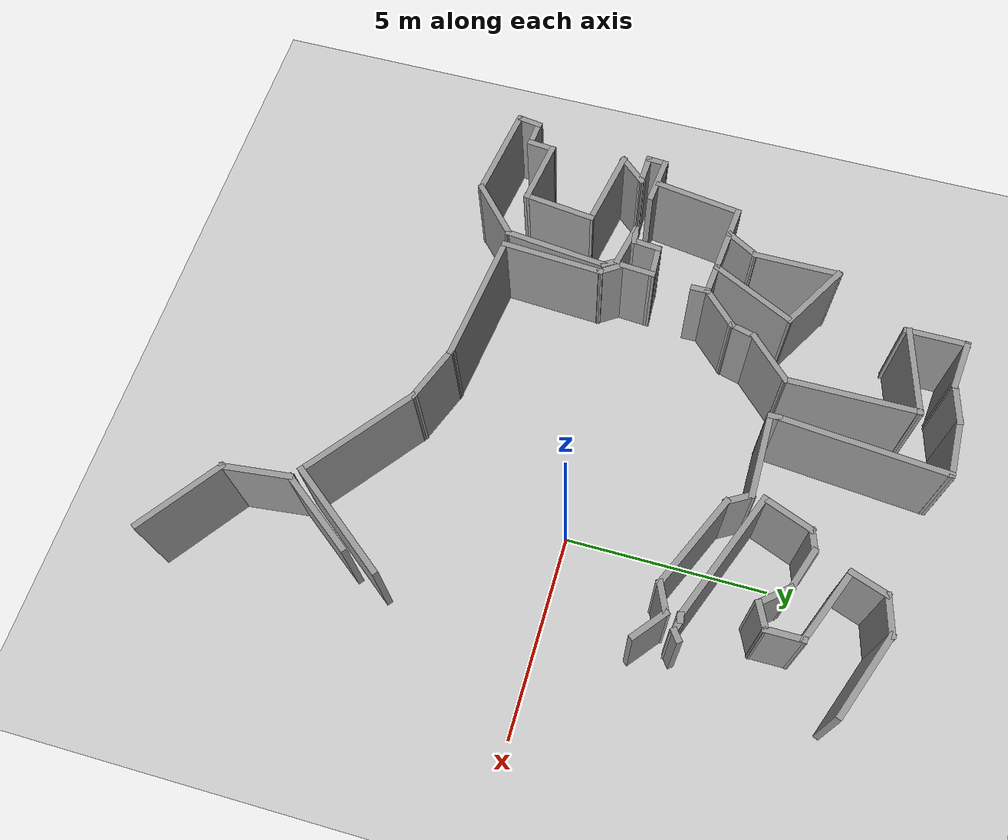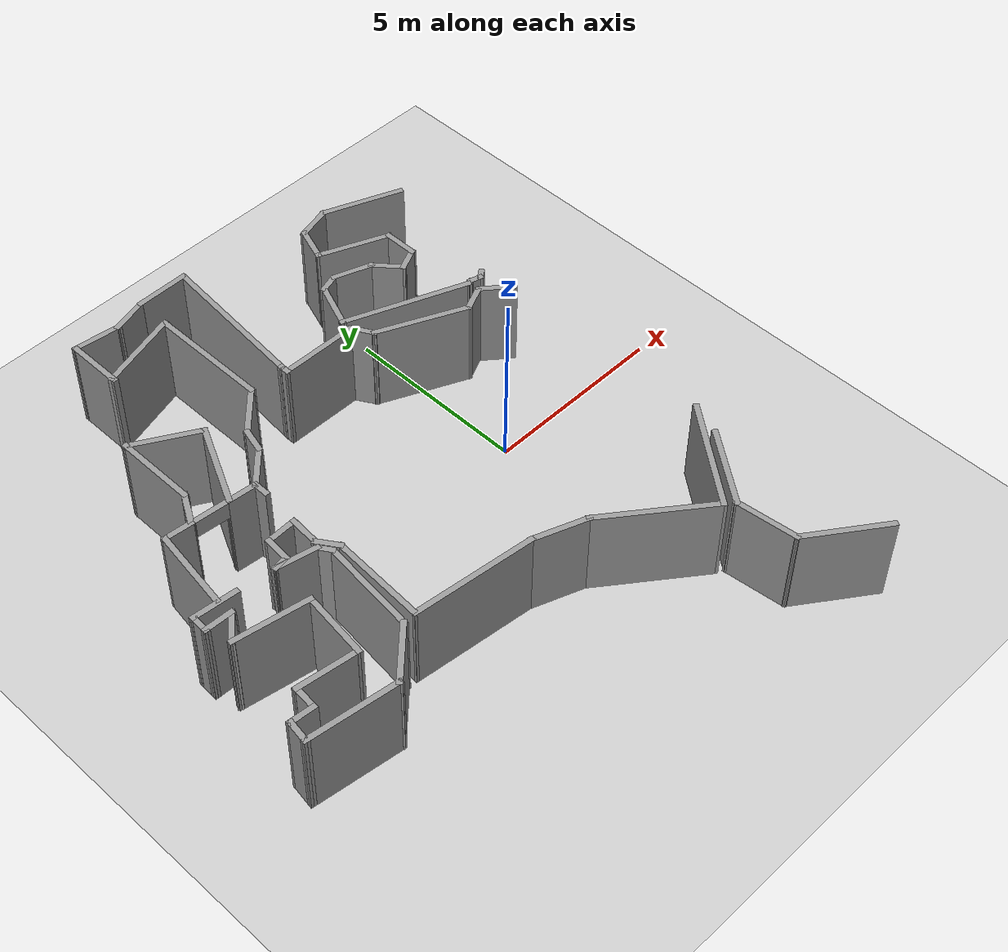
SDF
<sdf version="1.7">
 <world name="default">
  <model name="ground_plane">
   <static>1</static>
   <link name="link">
    <collision name="collision">
     <geometry><plane><normal>0 0 1</normal><size>100 100</size></plane></geometry>
     <surface><friction><ode><mu>100</mu><mu2>50</mu2></ode></friction></surface>
    </collision>
    <visual name="visual">
     <cast_shadows>0</cast_shadows>
     <geometry><plane><normal>0 0 1</normal><size>100 100</size></plane></geometry>
     <material>
      <script><uri>file://media/materials/scripts/gazebo.material</uri><name>Gazebo/Grey</name></script>
     </material>
    </visual>
   </link>
  </model>
  <model name="c82_house_gz">
   <pose>0.081452 -0.44571 0 0 -0 0</pose>
   <link name="Wall_0">
    <collision name="Wall_0_Collision">
     <geometry><box><size>1.61998 0.15 2.5</size></box></geometry>
     <pose>0 0 1.25 0 -0 0</pose>
    </collision>
    <visual name="Wall_0_Visual">
     <pose>0 0 1.25 0 -0 0</pose>
     <geometry><box><size>1.61998 0.15 2.5</size></box></geometry>
     <material>
      <script><uri>file://media/materials/scripts/gazebo.material</uri><name>Gazebo/Grey</name></script>
      <ambient>1 1 1 1</ambient>
     </material>
     <meta><layer>0</layer></meta>
    </visual>
    <pose>-6.59257 7.92893 0 0 -0 1.5708</pose>
   </link>
   <link name="Wall_1">
    <collision name="Wall_1_Collision">
     <geometry><box><size>1.33318 0.15 2.5</size></box></geometry>
     <pose>0 0 1.25 0 -0 0</pose>
    </collision>
    <visual name="Wall_1_Visual">
     <pose>0 0 1.25 0 -0 0</pose>
     <geometry><box><size>1.33318 0.15 2.5</size></box></geometry>
     <material>
      <script><uri>file://media/materials/scripts/gazebo.material</uri><name>Gazebo/Grey</name></script>
      <ambient>1 1 1 1</ambient>
     </material>
     <meta><layer>0</layer></meta>
    </visual>
    <pose>-6.00561 8.5898 0 0 -0 -0.125267</pose>
   </link>
   <link name="Wall_10">
    <collision name="Wall_10_Collision">
     <geometry><box><size>1.04168 0.15 2.5</size></box></geometry>
     <pose>0 0 1.25 0 -0 0</pose>
    </collision>
    <visual name="Wall_10_Visual">
     <pose>0 0 1.25 0 -0 0</pose>
     <geometry><box><size>1.04168 0.15 2.5</size></box></geometry>
     <material>
      <script><uri>file://media/materials/scripts/gazebo.material</uri><name>Gazebo/Grey</name></script>
      <ambient>1 1 1 1</ambient>
     </material>
     <meta><layer>0</layer></meta>
    </visual>
    <pose>2.08465 2.90774 0 0 -0 -0.685729</pose>
   </link>
   <link name="Wall_100">
    <collision name="Wall_100_Collision">
     <geometry><box><size>0.752581 0.15 2.5</size></box></geometry>
     <pose>0 0 1.25 0 -0 0</pose>
    </collision>
    <visual name="Wall_100_Visual">
     <pose>0 0 1.25 0 -0 0</pose>
     <geometry><box><size>0.752581 0.15 2.5</size></box></geometry>
     <material>
      <script><uri>file://media/materials/scripts/gazebo.material</uri><name>Gazebo/Grey</name></script>
      <ambient>1 1 1 1</ambient>
     </material>
     <meta><layer>0</layer></meta>
    </visual>
    <pose>-9.53018 -2.82113 0 0 -0 1.48014</pose>
   </link>
   <link name="Wall_101">
    <collision name="Wall_101_Collision">
     <geometry><box><size>1.74708 0.15 2.5</size></box></geometry>
     <pose>0 0 1.25 0 -0 0</pose>
    </collision>
    <visual name="Wall_101_Visual">
     <pose>0 0 1.25 0 -0 0</pose>
     <geometry><box><size>1.74708 0.15 2.5</size></box></geometry>
     <material>
      <script><uri>file://media/materials/scripts/gazebo.material</uri><name>Gazebo/Grey</name></script>
      <ambient>1 1 1 1</ambient>
     </material>
     <meta><layer>0</layer></meta>
    </visual>
    <pose>-8.71186 -2.63019 0 0 -0 -0.137066</pose>
   </link>
   <link name="Wall_102">
    <collision name="Wall_102_Collision">
     <geometry><box><size>1.90935 0.15 2.5</size></box></geometry>
     <pose>0 0 1.25 0 -0 0</pose>
    </collision>
    <visual name="Wall_102_Visual">
     <pose>0 0 1.25 0 -0 0</pose>
     <geometry><box><size>1.90935 0.15 2.5</size></box></geometry>
     <material>
      <script><uri>file://media/materials/scripts/gazebo.material</uri><name>Gazebo/Grey</name></script>
      <ambient>1 1 1 1</ambient>
     </material>
     <meta><layer>0</layer></meta>
    </visual>
    <pose>-7.8117 -1.86642 0 0 -0 1.44644</pose>
   </link>
   <link name="Wall_103">
    <collision name="Wall_103_Collision">
     <geometry><box><size>2.14574 0.15 2.5</size></box></geometry>
     <pose>0 0 1.25 0 -0 0</pose>
    </collision>
    <visual name="Wall_103_Visual">
     <pose>0 0 1.25 0 -0 0</pose>
     <geometry><box><size>2.14574 0.15 2.5</size></box></geometry>
     <material>
      <script><uri>file://media/materials/scripts/gazebo.material</uri><name>Gazebo/Grey</name></script>
      <ambient>1 1 1 1</ambient>
     </material>
     <meta><layer>0</layer></meta>
    </visual>
    <pose>-8.68458 -0.816233 0 0 -0 2.96296</pose>
   </link>
   <link name="Wall_104">
    <collision name="Wall_104_Collision">
     <geometry><box><size>0.942928 0.15 2.5</size></box></geometry>
     <pose>0 0 1.25 0 -0 0</pose>
    </collision>
    <visual name="Wall_104_Visual">
     <pose>0 0 1.25 0 -0 0</pose>
     <geometry><box><size>0.942928 0.15 2.5</size></box></geometry>
     <material>
      <script><uri>file://media/materials/scripts/gazebo.material</uri><name>Gazebo/Grey</name></script>
      <ambient>1 1 1 1</ambient>
     </material>
     <meta><layer>0</layer></meta>
    </visual>
    <pose>-9.40743 -0.338876 0 0 -0 0.858439</pose>
   </link>
   <link name="Wall_105">
    <collision name="Wall_105_Collision">
     <geometry><box><size>0.859741 0.15 2.5</size></box></geometry>
     <pose>0 0 1.25 0 -0 0</pose>
    </collision>
    <visual name="Wall_105_Visual">
     <pose>0 0 1.25 0 -0 0</pose>
     <geometry><box><size>0.859741 0.15 2.5</size></box></geometry>
     <material>
      <script><uri>file://media/materials/scripts/gazebo.material</uri><name>Gazebo/Grey</name></script>
      <ambient>1 1 1 1</ambient>
     </material>
     <meta><layer>0</layer></meta>
    </visual>
    <pose>-9.50291 -0.025184 0 0 -0 3.10315</pose>
   </link>
   <link name="Wall_106">
    <collision name="Wall_106_Collision">
     <geometry><box><size>0.587293 0.15 2.5</size></box></geometry>
     <pose>0 0 1.25 0 -0 0</pose>
    </collision>
    <visual name="Wall_106_Visual">
     <pose>0 0 1.25 0 -0 0</pose>
     <geometry><box><size>0.587293 0.15 2.5</size></box></geometry>
     <material>
      <script><uri>file://media/materials/scripts/gazebo.material</uri><name>Gazebo/Grey</name></script>
      <ambient>1 1 1 1</ambient>
     </material>
     <meta><layer>0</layer></meta>
    </visual>
    <pose>-9.84388 0.206675 0 0 -0 1.50838</pose>
   </link>
   <link name="Wall_107">
    <collision name="Wall_107_Collision">
     <geometry><box><size>1.27369 0.15 2.5</size></box></geometry>
     <pose>0 0 1.25 0 -0 0</pose>
    </collision>
    <visual name="Wall_107_Visual">
     <pose>0 0 1.25 0 -0 0</pose>
     <geometry><box><size>1.27369 0.15 2.5</size></box></geometry>
     <material>
      <script><uri>file://media/materials/scripts/gazebo.material</uri><name>Gazebo/Grey</name></script>
      <ambient>1 1 1 1</ambient>
     </material>
     <meta><layer>0</layer></meta>
    </visual>
    <pose>-9.27105 0.370341 0 0 -0 -0.097253</pose>
   </link>
   <link name="Wall_110">
    <collision name="Wall_110_Collision">
     <geometry><box><size>2.30192 0.15 2.5</size></box></geometry>
     <pose>0 0 1.25 0 -0 0</pose>
    </collision>
    <visual name="Wall_110_Visual">
     <pose>0 0 1.25 0 -0 0</pose>
     <geometry><box><size>2.30192 0.15 2.5</size></box></geometry>
     <material>
      <script><uri>file://media/materials/scripts/gazebo.material</uri><name>Gazebo/Grey</name></script>
      <ambient>1 1 1 1</ambient>
     </material>
     <meta><layer>0</layer></meta>
    </visual>
    <pose>-9.01638 1.49172 0 0 -0 1.42533</pose>
   </link>
   <link name="Wall_111">
    <pose>-7.6263 2.43426 0 0 -0 -0.098581</pose>
    <visual name="Wall_111_Visual_0">
     <pose>-0.88941 0 1.25 0 -0 0</pose>
     <geometry><box><size>0.851464 0.15 2.5</size></box></geometry>
     <material>
      <script><uri>file://media/materials/scripts/gazebo.material</uri><name>Gazebo/Grey</name></script>
      <ambient>1 1 1 1</ambient>
     </material>
     <meta><layer>0</layer></meta>
    </visual>
    <collision name="Wall_111_Collision_0">
     <geometry><box><size>0.851464 0.15 2.5</size></box></geometry>
     <pose>-0.88941 0 1.25 0 -0 0</pose>
    </collision>
    <visual name="Wall_111_Visual_1">
     <pose>0.875732 0 1.25 0 -0 0</pose>
     <geometry><box><size>0.87882 0.15 2.5</size></box></geometry>
     <material>
      <script><uri>file://media/materials/scripts/gazebo.material</uri><name>Gazebo/Grey</name></script>
      <ambient>1 1 1 1</ambient>
     </material>
     <meta><layer>0</layer></meta>
    </visual>
    <collision name="Wall_111_Collision_1">
     <geometry><box><size>0.87882 0.15 2.5</size></box></geometry>
     <pose>0.875732 0 1.25 0 -0 0</pose>
    </collision>
    <visual name="Wall_111_Visual_2">
     <pose>-0.013678 0 2.25 0 -0 0</pose>
     <geometry><box><size>0.9 0.15 0.5</size></box></geometry>
     <material>
      <script><uri>file://media/materials/scripts/gazebo.material</uri><name>Gazebo/Grey</name></script>
      <ambient>1 1 1 1</ambient>
     </material>
     <meta><layer>0</layer></meta>
    </visual>
    <collision name="Wall_111_Collision_2">
     <geometry><box><size>0.9 0.15 0.5</size></box></geometry>
     <pose>-0.013678 0 2.25 0 -0 0</pose>
    </collision>
   </link>
   <link name="Wall_112">
    <collision name="Wall_112_Collision">
     <geometry><box><size>0.5 0.15 2.5</size></box></geometry>
     <pose>0 0 1.25 0 -0 0</pose>
    </collision>
    <visual name="Wall_112_Visual">
     <pose>0 0 1.25 0 -0 0</pose>
     <geometry><box><size>0.5 0.15 2.5</size></box></geometry>
     <material>
      <script><uri>file://media/materials/scripts/gazebo.material</uri><name>Gazebo/Grey</name></script>
      <ambient>1 1 1 1</ambient>
     </material>
     <meta><layer>0</layer></meta>
    </visual>
    <pose>-6.39218 2.1372 0 0 -0 -1.5708</pose>
   </link>
   <link name="Wall_114">
    <collision name="Wall_114_Collision">
     <geometry><box><size>1.25 0.15 2.5</size></box></geometry>
     <pose>0 0 1.25 0 -0 0</pose>
    </collision>
    <visual name="Wall_114_Visual">
     <pose>0 0 1.25 0 -0 0</pose>
     <geometry><box><size>1.25 0.15 2.5</size></box></geometry>
     <material>
      <script><uri>file://media/materials/scripts/gazebo.material</uri><name>Gazebo/Grey</name></script>
      <ambient>1 1 1 1</ambient>
     </material>
     <meta><layer>0</layer></meta>
    </visual>
    <pose>-6.00327 2.70111 0 0 -0 0.785398</pose>
   </link>
   <link name="Wall_115">
    <collision name="Wall_115_Collision">
     <geometry><box><size>0.75 0.15 2.5</size></box></geometry>
     <pose>0 0 1.25 0 -0 0</pose>
    </collision>
    <visual name="Wall_115_Visual">
     <pose>0 0 1.25 0 -0 0</pose>
     <geometry><box><size>0.75 0.15 2.5</size></box></geometry>
     <material>
      <script><uri>file://media/materials/scripts/gazebo.material</uri><name>Gazebo/Grey</name></script>
      <ambient>1 1 1 1</ambient>
     </material>
     <meta><layer>0</layer></meta>
    </visual>
    <pose>-5.53671 3.3798 0 0 -0 1.309</pose>
   </link>
   <link name="Wall_116">
    <collision name="Wall_116_Collision">
     <geometry><box><size>1.5 0.15 2.5</size></box></geometry>
     <pose>0 0 1.25 0 -0 0</pose>
    </collision>
    <visual name="Wall_116_Visual">
     <pose>0 0 1.25 0 -0 0</pose>
     <geometry><box><size>1.5 0.15 2.5</size></box></geometry>
     <material>
      <script><uri>file://media/materials/scripts/gazebo.material</uri><name>Gazebo/Grey</name></script>
      <ambient>1 1 1 1</ambient>
     </material>
     <meta><layer>0</layer></meta>
    </visual>
    <pose>-4.98177 4.14687 0 0 -0 0.785398</pose>
   </link>
   <link name="Wall_117">
    <collision name="Wall_117_Collision">
     <geometry><box><size>3.34723 0.15 2.5</size></box></geometry>
     <pose>0 0 1.25 0 -0 0</pose>
    </collision>
    <visual name="Wall_117_Visual">
     <pose>0 0 1.25 0 -0 0</pose>
     <geometry><box><size>3.34723 0.15 2.5</size></box></geometry>
     <material>
      <script><uri>file://media/materials/scripts/gazebo.material</uri><name>Gazebo/Grey</name></script>
      <ambient>1 1 1 1</ambient>
     </material>
     <meta><layer>0</layer></meta>
    </visual>
    <pose>-4.50946 6.22253 0 0 -0 1.57392</pose>
   </link>
   <link name="Wall_118">
    <collision name="Wall_118_Collision">
     <geometry><box><size>2.31356 0.15 2.5</size></box></geometry>
     <pose>0 0 1.25 0 -0 0</pose>
    </collision>
    <visual name="Wall_118_Visual">
     <pose>0 0 1.25 0 -0 0</pose>
     <geometry><box><size>2.31356 0.15 2.5</size></box></geometry>
     <material>
      <script><uri>file://media/materials/scripts/gazebo.material</uri><name>Gazebo/Grey</name></script>
      <ambient>1 1 1 1</ambient>
     </material>
     <meta><layer>0</layer></meta>
    </visual>
    <pose>-5.55812 7.53625 0 0 -0 -2.87534</pose>
   </link>
   <link name="Wall_132">
    <collision name="Wall_132_Collision">
     <geometry><box><size>1 0.15 2.5</size></box></geometry>
     <pose>0 0 1.25 0 -0 0</pose>
    </collision>
    <visual name="Wall_132_Visual">
     <pose>0 0 1.25 0 -0 0</pose>
     <geometry><box><size>1 0.15 2.5</size></box></geometry>
     <material>
      <script><uri>file://media/materials/scripts/gazebo.material</uri><name>Gazebo/Grey</name></script>
      <ambient>1 1 1 1</ambient>
     </material>
     <meta><layer>0</layer></meta>
    </visual>
    <pose>-7.93835 2.87124 0 0 -0 1.0472</pose>
   </link>
   <link name="Wall_133">
    <collision name="Wall_133_Collision">
     <geometry><box><size>2.25 0.15 2.5</size></box></geometry>
     <pose>0 0 1.25 0 -0 0</pose>
    </collision>
    <visual name="Wall_133_Visual">
     <pose>0 0 1.25 0 -0 0</pose>
     <geometry><box><size>2.25 0.15 2.5</size></box></geometry>
     <material>
      <script><uri>file://media/materials/scripts/gazebo.material</uri><name>Gazebo/Grey</name></script>
      <ambient>1 1 1 1</ambient>
     </material>
     <meta><layer>0</layer></meta>
    </visual>
    <pose>-7.72585 4.2893 0 0 -0 1.5708</pose>
   </link>
   <link name="Wall_134">
    <collision name="Wall_134_Collision">
     <geometry><box><size>2 0.15 2.5</size></box></geometry>
     <pose>0 0 1.25 0 -0 0</pose>
    </collision>
    <visual name="Wall_134_Visual">
     <pose>0 0 1.25 0 -0 0</pose>
     <geometry><box><size>2 0.15 2.5</size></box></geometry>
     <material>
      <script><uri>file://media/materials/scripts/gazebo.material</uri><name>Gazebo/Grey</name></script>
      <ambient>1 1 1 1</ambient>
     </material>
     <meta><layer>0</layer></meta>
    </visual>
    <pose>-6.92478 4.87681 0 0 -0 -0.523599</pose>
   </link>
   <link name="Wall_135">
    <collision name="Wall_135_Collision">
     <geometry><box><size>2.38602 0.15 2.5</size></box></geometry>
     <pose>0 0 1.25 0 -0 0</pose>
    </collision>
    <visual name="Wall_135_Visual">
     <pose>0 0 1.25 0 -0 0</pose>
     <geometry><box><size>2.38602 0.15 2.5</size></box></geometry>
     <material>
      <script><uri>file://media/materials/scripts/gazebo.material</uri><name>Gazebo/Grey</name></script>
      <ambient>1 1 1 1</ambient>
     </material>
     <meta><layer>0</layer></meta>
    </visual>
    <pose>-6.6181 3.41155 0 0 -0 -2.02886</pose>
   </link>
   <link name="Wall_19">
    <collision name="Wall_19_Collision">
     <geometry><box><size>0.355093 0.15 2.5</size></box></geometry>
     <pose>0 0 1.25 0 -0 0</pose>
    </collision>
    <visual name="Wall_19_Visual">
     <pose>0 0 1.25 0 -0 0</pose>
     <geometry><box><size>0.355093 0.15 2.5</size></box></geometry>
     <material>
      <script><uri>file://media/materials/scripts/gazebo.material</uri><name>Gazebo/Grey</name></script>
      <ambient>1 1 1 1</ambient>
     </material>
     <meta><layer>0</layer></meta>
    </visual>
    <pose>2.16046 3.52086 0 0 -0 -2.49809</pose>
   </link>
   <link name="Wall_2">
    <collision name="Wall_2_Collision">
     <geometry><box><size>1.09275 0.15 2.5</size></box></geometry>
     <pose>0 0 1.25 0 -0 0</pose>
    </collision>
    <visual name="Wall_2_Visual">
     <pose>0 0 1.25 0 -0 0</pose>
     <geometry><box><size>1.09275 0.15 2.5</size></box></geometry>
     <material>
      <script><uri>file://media/materials/scripts/gazebo.material</uri><name>Gazebo/Grey</name></script>
      <ambient>1 1 1 1</ambient>
     </material>
     <meta><layer>0</layer></meta>
    </visual>
    <pose>-4.96213 8.63327 0 0 -0 0.25169</pose>
   </link>
   <link name="Wall_20">
    <collision name="Wall_20_Collision">
     <geometry><box><size>0.426115 0.15 2.5</size></box></geometry>
     <pose>0 0 1.25 0 -0 0</pose>
    </collision>
    <visual name="Wall_20_Visual">
     <pose>0 0 1.25 0 -0 0</pose>
     <geometry><box><size>0.426115 0.15 2.5</size></box></geometry>
     <material>
      <script><uri>file://media/materials/scripts/gazebo.material</uri><name>Gazebo/Grey</name></script>
      <ambient>1 1 1 1</ambient>
     </material>
     <meta><layer>0</layer></meta>
    </visual>
    <pose>1.94511 3.49522 0 0 -0 2.8786</pose>
   </link>
   <link name="Wall_21">
    <collision name="Wall_21_Collision">
     <geometry><box><size>0.26465 0.15 2.5</size></box></geometry>
     <pose>0 0 1.25 0 -0 0</pose>
    </collision>
    <visual name="Wall_21_Visual">
     <pose>0 0 1.25 0 -0 0</pose>
     <geometry><box><size>0.26465 0.15 2.5</size></box></geometry>
     <material>
      <script><uri>file://media/materials/scripts/gazebo.material</uri><name>Gazebo/Grey</name></script>
      <ambient>1 1 1 1</ambient>
     </material>
     <meta><layer>0</layer></meta>
    </visual>
    <pose>1.7554 3.52086 0 0 -0 -2.96174</pose>
   </link>
   <link name="Wall_22">
    <collision name="Wall_22_Collision">
     <geometry><box><size>3.51104 0.15 2.5</size></box></geometry>
     <pose>0 0 1.25 0 -0 0</pose>
    </collision>
    <visual name="Wall_22_Visual">
     <pose>0 0 1.25 0 -0 0</pose>
     <geometry><box><size>3.51104 0.15 2.5</size></box></geometry>
     <material>
      <script><uri>file://media/materials/scripts/gazebo.material</uri><name>Gazebo/Grey</name></script>
      <ambient>1 1 1 1</ambient>
     </material>
     <meta><layer>0</layer></meta>
    </visual>
    <pose>0.135165 4.12588 0 0 -0 2.76675</pose>
   </link>
   <link name="Wall_23">
    <collision name="Wall_23_Collision">
     <geometry><box><size>1.40681 0.15 2.5</size></box></geometry>
     <pose>0 0 1.25 0 -0 0</pose>
    </collision>
    <visual name="Wall_23_Visual">
     <pose>0 0 1.25 0 -0 0</pose>
     <geometry><box><size>1.40681 0.15 2.5</size></box></geometry>
     <material>
      <script><uri>file://media/materials/scripts/gazebo.material</uri><name>Gazebo/Grey</name></script>
      <ambient>1 1 1 1</ambient>
     </material>
     <meta><layer>0</layer></meta>
    </visual>
    <pose>-1.19794 5.32568 0 0 -0 1.19484</pose>
   </link>
   <link name="Wall_24">
    <collision name="Wall_24_Collision">
     <geometry><box><size>0.633276 0.15 2.5</size></box></geometry>
     <pose>0 0 1.25 0 -0 0</pose>
    </collision>
    <visual name="Wall_24_Visual">
     <pose>0 0 1.25 0 -0 0</pose>
     <geometry><box><size>0.633276 0.15 2.5</size></box></geometry>
     <material>
      <script><uri>file://media/materials/scripts/gazebo.material</uri><name>Gazebo/Grey</name></script>
      <ambient>1 1 1 1</ambient>
     </material>
     <meta><layer>0</layer></meta>
    </visual>
    <pose>-0.73648 5.98197 0 0 -0 0.301619</pose>
   </link>
   <link name="Wall_25">
    <collision name="Wall_25_Collision">
     <geometry><box><size>1.17161 0.15 2.5</size></box></geometry>
     <pose>0 0 1.25 0 -0 0</pose>
    </collision>
    <visual name="Wall_25_Visual">
     <pose>0 0 1.25 0 -0 0</pose>
     <geometry><box><size>1.17161 0.15 2.5</size></box></geometry>
     <material>
      <script><uri>file://media/materials/scripts/gazebo.material</uri><name>Gazebo/Grey</name></script>
      <ambient>1 1 1 1</ambient>
     </material>
     <meta><layer>0</layer></meta>
    </visual>
    <pose>-0.023782 5.88455 0 0 -0 -0.337622</pose>
   </link>
   <link name="Wall_26">
    <collision name="Wall_26_Collision">
     <geometry><box><size>0.965357 0.15 2.5</size></box></geometry>
     <pose>0 0 1.25 0 -0 0</pose>
    </collision>
    <visual name="Wall_26_Visual">
     <pose>0 0 1.25 0 -0 0</pose>
     <geometry><box><size>0.965357 0.15 2.5</size></box></geometry>
     <material>
      <script><uri>file://media/materials/scripts/gazebo.material</uri><name>Gazebo/Grey</name></script>
      <ambient>1 1 1 1</ambient>
     </material>
     <meta><layer>0</layer></meta>
    </visual>
    <pose>0.71968 5.40259 0 0 -0 -0.874448</pose>
   </link>
   <link name="Wall_27">
    <collision name="Wall_27_Collision">
     <geometry><box><size>0.750926 0.15 2.5</size></box></geometry>
     <pose>0 0 1.25 0 -0 0</pose>
    </collision>
    <visual name="Wall_27_Visual">
     <pose>0 0 1.25 0 -0 0</pose>
     <geometry><box><size>0.750926 0.15 2.5</size></box></geometry>
     <material>
      <script><uri>file://media/materials/scripts/gazebo.material</uri><name>Gazebo/Grey</name></script>
      <ambient>1 1 1 1</ambient>
     </material>
     <meta><layer>0</layer></meta>
    </visual>
    <pose>1.25292 5.218 0 0 -0 0.440751</pose>
   </link>
   <link name="Wall_29">
    <collision name="Wall_29_Collision">
     <geometry><box><size>1 0.15 2.5</size></box></geometry>
     <pose>0 0 1.25 0 -0 0</pose>
    </collision>
    <visual name="Wall_29_Visual">
     <pose>0 0 1.25 0 -0 0</pose>
     <geometry><box><size>1 0.15 2.5</size></box></geometry>
     <material>
      <script><uri>file://media/materials/scripts/gazebo.material</uri><name>Gazebo/Grey</name></script>
      <ambient>1 1 1 1</ambient>
     </material>
     <meta><layer>0</layer></meta>
    </visual>
    <pose>1.52467 5.77119 0 0 -0 1.5708</pose>
   </link>
   <link name="Wall_3">
    <collision name="Wall_3_Collision">
     <geometry><box><size>1.52394 0.15 2.5</size></box></geometry>
     <pose>0 0 1.25 0 -0 0</pose>
    </collision>
    <visual name="Wall_3_Visual">
     <pose>0 0 1.25 0 -0 0</pose>
     <geometry><box><size>1.52394 0.15 2.5</size></box></geometry>
     <material>
      <script><uri>file://media/materials/scripts/gazebo.material</uri><name>Gazebo/Grey</name></script>
      <ambient>1 1 1 1</ambient>
     </material>
     <meta><layer>0</layer></meta>
    </visual>
    <pose>-3.81865 8.75501 0 0 -0 0.006329</pose>
   </link>
   <link name="Wall_30">
    <collision name="Wall_30_Collision">
     <geometry><box><size>2.05668 0.15 2.5</size></box></geometry>
     <pose>0 0 1.25 0 -0 0</pose>
    </collision>
    <visual name="Wall_30_Visual">
     <pose>0 0 1.25 0 -0 0</pose>
     <geometry><box><size>2.05668 0.15 2.5</size></box></geometry>
     <material>
      <script><uri>file://media/materials/scripts/gazebo.material</uri><name>Gazebo/Grey</name></script>
      <ambient>1 1 1 1</ambient>
     </material>
     <meta><layer>0</layer></meta>
    </visual>
    <pose>0.64437 6.56215 0 0 -0 2.7476</pose>
   </link>
   <link name="Wall_31">
    <collision name="Wall_31_Collision">
     <geometry><box><size>1.05814 0.15 2.5</size></box></geometry>
     <pose>0 0 1.25 0 -0 0</pose>
    </collision>
    <visual name="Wall_31_Visual">
     <pose>0 0 1.25 0 -0 0</pose>
     <geometry><box><size>1.05814 0.15 2.5</size></box></geometry>
     <material>
      <script><uri>file://media/materials/scripts/gazebo.material</uri><name>Gazebo/Grey</name></script>
      <ambient>1 1 1 1</ambient>
     </material>
     <meta><layer>0</layer></meta>
    </visual>
    <pose>-0.084338 7.35613 0 0 -0 1.23041</pose>
   </link>
   <link name="Wall_32">
    <collision name="Wall_32_Collision">
     <geometry><box><size>1.04322 0.15 2.5</size></box></geometry>
     <pose>0 0 1.25 0 -0 0</pose>
    </collision>
    <visual name="Wall_32_Visual">
     <pose>0 0 1.25 0 -0 0</pose>
     <geometry><box><size>1.04322 0.15 2.5</size></box></geometry>
     <material>
      <script><uri>file://media/materials/scripts/gazebo.material</uri><name>Gazebo/Grey</name></script>
      <ambient>1 1 1 1</ambient>
     </material>
     <meta><layer>0</layer></meta>
    </visual>
    <pose>0.499731 7.89561 0 0 -0 0.252242</pose>
   </link>
   <link name="Wall_33">
    <collision name="Wall_33_Collision">
     <geometry><box><size>2.28774 0.15 2.5</size></box></geometry>
     <pose>0 0 1.25 0 -0 0</pose>
    </collision>
    <visual name="Wall_33_Visual">
     <pose>0 0 1.25 0 -0 0</pose>
     <geometry><box><size>2.28774 0.15 2.5</size></box></geometry>
     <material>
      <script><uri>file://media/materials/scripts/gazebo.material</uri><name>Gazebo/Grey</name></script>
      <ambient>1 1 1 1</ambient>
     </material>
     <meta><layer>0</layer></meta>
    </visual>
    <pose>1.92646 7.61472 0 0 -0 -0.375859</pose>
   </link>
   <link name="Wall_4">
    <collision name="Wall_4_Collision">
     <geometry><box><size>4.2619 0.15 2.5</size></box></geometry>
     <pose>0 0 1.25 0 -0 0</pose>
    </collision>
    <visual name="Wall_4_Visual">
     <pose>0 0 1.25 0 -0 0</pose>
     <geometry><box><size>4.2619 0.15 2.5</size></box></geometry>
     <material>
      <script><uri>file://media/materials/scripts/gazebo.material</uri><name>Gazebo/Grey</name></script>
      <ambient>1 1 1 1</ambient>
     </material>
     <meta><layer>0</layer></meta>
    </visual>
    <pose>-3.31431 6.71153 0 0 -0 -1.65973</pose>
   </link>
   <link name="Wall_5">
    <collision name="Wall_5_Collision">
     <geometry><box><size>0.350189 0.15 2.5</size></box></geometry>
     <pose>0 0 1.25 0 -0 0</pose>
    </collision>
    <visual name="Wall_5_Visual">
     <pose>0 0 1.25 0 -0 0</pose>
     <geometry><box><size>0.350189 0.15 2.5</size></box></geometry>
     <material>
      <script><uri>file://media/materials/scripts/gazebo.material</uri><name>Gazebo/Grey</name></script>
      <ambient>1 1 1 1</ambient>
     </material>
     <meta><layer>0</layer></meta>
    </visual>
    <pose>-3.49691 4.56371 0 0 -0 -1.5708</pose>
   </link>
   <link name="Wall_6">
    <collision name="Wall_6_Collision">
     <geometry><box><size>2.21087 0.15 2.5</size></box></geometry>
     <pose>0 0 1.25 0 -0 0</pose>
    </collision>
    <visual name="Wall_6_Visual">
     <pose>0 0 1.25 0 -0 0</pose>
     <geometry><box><size>2.21087 0.15 2.5</size></box></geometry>
     <material>
      <script><uri>file://media/materials/scripts/gazebo.material</uri><name>Gazebo/Grey</name></script>
      <ambient>1 1 1 1</ambient>
     </material>
     <meta><layer>0</layer></meta>
    </visual>
    <pose>-2.46648 4.45501 0 0 -0 -0.008439</pose>
   </link>
   <link name="Wall_7">
    <collision name="Wall_7_Collision">
     <geometry><box><size>0.75 0.15 2.5</size></box></geometry>
     <pose>0 0 1.25 0 -0 0</pose>
    </collision>
    <visual name="Wall_7_Visual">
     <pose>0 0 1.25 0 -0 0</pose>
     <geometry><box><size>0.75 0.15 2.5</size></box></geometry>
     <material>
      <script><uri>file://media/materials/scripts/gazebo.material</uri><name>Gazebo/Grey</name></script>
      <ambient>1 1 1 1</ambient>
     </material>
     <meta><layer>0</layer></meta>
    </visual>
    <pose>-1.28604 4.18651 0 0 -0 -1.0472</pose>
   </link>
   <link name="Wall_76">
    <collision name="Wall_76_Collision">
     <geometry><box><size>2.41547 0.15 2.5</size></box></geometry>
     <pose>0 0 1.25 0 -0 0</pose>
    </collision>
    <visual name="Wall_76_Visual">
     <pose>0 0 1.25 0 -0 0</pose>
     <geometry><box><size>2.41547 0.15 2.5</size></box></geometry>
     <material>
      <script><uri>file://media/materials/scripts/gazebo.material</uri><name>Gazebo/Grey</name></script>
      <ambient>1 1 1 1</ambient>
     </material>
     <meta><layer>0</layer></meta>
    </visual>
    <pose>2.01831 -8.07935 0 0 -0 2.52204</pose>
   </link>
   <link name="Wall_77">
    <collision name="Wall_77_Collision">
     <geometry><box><size>1.75997 0.15 2.5</size></box></geometry>
     <pose>0 0 1.25 0 -0 0</pose>
    </collision>
    <visual name="Wall_77_Visual">
     <pose>0 0 1.25 0 -0 0</pose>
     <geometry><box><size>1.75997 0.15 2.5</size></box></geometry>
     <material>
      <script><uri>file://media/materials/scripts/gazebo.material</uri><name>Gazebo/Grey</name></script>
      <ambient>1 1 1 1</ambient>
     </material>
     <meta><layer>0</layer></meta>
    </visual>
    <pose>1.00796 -6.62146 0 0 -0 1.68052</pose>
   </link>
   <link name="Wall_78">
    <collision name="Wall_78_Collision">
     <geometry><box><size>2.31988 0.15 2.5</size></box></geometry>
     <pose>0 0 1.25 0 -0 0</pose>
    </collision>
    <visual name="Wall_78_Visual">
     <pose>0 0 1.25 0 -0 0</pose>
     <geometry><box><size>2.31988 0.15 2.5</size></box></geometry>
     <material>
      <script><uri>file://media/materials/scripts/gazebo.material</uri><name>Gazebo/Grey</name></script>
      <ambient>1 1 1 1</ambient>
     </material>
     <meta><layer>0</layer></meta>
    </visual>
    <pose>1.57078 -4.95336 0 0 -0 0.927295</pose>
   </link>
   <link name="Wall_8">
    <collision name="Wall_8_Collision">
     <geometry><box><size>2.61838 0.15 2.5</size></box></geometry>
     <pose>0 0 1.25 0 -0 0</pose>
    </collision>
    <visual name="Wall_8_Visual">
     <pose>0 0 1.25 0 -0 0</pose>
     <geometry><box><size>2.61838 0.15 2.5</size></box></geometry>
     <material>
      <script><uri>file://media/materials/scripts/gazebo.material</uri><name>Gazebo/Grey</name></script>
      <ambient>1 1 1 1</ambient>
     </material>
     <meta><layer>0</layer></meta>
    </visual>
    <pose>-0.011919 3.41722 0 0 -0 -0.425531</pose>
   </link>
   <link name="Wall_83">
    <collision name="Wall_83_Collision">
     <geometry><box><size>3.16645 0.15 2.5</size></box></geometry>
     <pose>0 0 1.25 0 -0 0</pose>
    </collision>
    <visual name="Wall_83_Visual">
     <pose>0 0 1.25 0 -0 0</pose>
     <geometry><box><size>3.16645 0.15 2.5</size></box></geometry>
     <material>
      <script><uri>file://media/materials/scripts/gazebo.material</uri><name>Gazebo/Grey</name></script>
      <ambient>1 1 1 1</ambient>
     </material>
     <meta><layer>0</layer></meta>
    </visual>
    <pose>1.61146 -4.43802 0 0 -0 -2.22869</pose>
   </link>
   <link name="Wall_84">
    <collision name="Wall_84_Collision">
     <geometry><box><size>3.23676 0.15 2.5</size></box></geometry>
     <pose>0 0 1.25 0 -0 0</pose>
    </collision>
    <visual name="Wall_84_Visual">
     <pose>0 0 1.25 0 -0 0</pose>
     <geometry><box><size>3.23676 0.15 2.5</size></box></geometry>
     <material>
      <script><uri>file://media/materials/scripts/gazebo.material</uri><name>Gazebo/Grey</name></script>
      <ambient>1 1 1 1</ambient>
     </material>
     <meta><layer>0</layer></meta>
    </visual>
    <pose>-0.538078 -4.69569 0 0 -0 2.49018</pose>
   </link>
   <link name="Wall_85">
    <collision name="Wall_85_Collision">
     <geometry><box><size>1.59603 0.15 2.5</size></box></geometry>
     <pose>0 0 1.25 0 -0 0</pose>
    </collision>
    <visual name="Wall_85_Visual">
     <pose>0 0 1.25 0 -0 0</pose>
     <geometry><box><size>1.59603 0.15 2.5</size></box></geometry>
     <material>
      <script><uri>file://media/materials/scripts/gazebo.material</uri><name>Gazebo/Grey</name></script>
      <ambient>1 1 1 1</ambient>
     </material>
     <meta><layer>0</layer></meta>
    </visual>
    <pose>-2.44351 -3.50904 0 0 -0 2.78721</pose>
   </link>
   <link name="Wall_86">
    <collision name="Wall_86_Collision">
     <geometry><box><size>3.4269 0.15 2.5</size></box></geometry>
     <pose>0 0 1.25 0 -0 0</pose>
    </collision>
    <visual name="Wall_86_Visual">
     <pose>0 0 1.25 0 -0 0</pose>
     <geometry><box><size>3.4269 0.15 2.5</size></box></geometry>
     <material>
      <script><uri>file://media/materials/scripts/gazebo.material</uri><name>Gazebo/Grey</name></script>
      <ambient>1 1 1 1</ambient>
     </material>
     <meta><layer>0</layer></meta>
    </visual>
    <pose>-4.74901 -3.06828 0 0 -0 3.02545</pose>
   </link>
   <link name="Wall_87">
    <collision name="Wall_87_Collision">
     <geometry><box><size>2.66655 0.15 2.5</size></box></geometry>
     <pose>0 0 1.25 0 -0 0</pose>
    </collision>
    <visual name="Wall_87_Visual">
     <pose>0 0 1.25 0 -0 0</pose>
     <geometry><box><size>2.66655 0.15 2.5</size></box></geometry>
     <material>
      <script><uri>file://media/materials/scripts/gazebo.material</uri><name>Gazebo/Grey</name></script>
      <ambient>1 1 1 1</ambient>
     </material>
     <meta><layer>0</layer></meta>
    </visual>
    <pose>-6.30301 -1.62228 0 0 -0 1.51242</pose>
   </link>
   <link name="Wall_88">
    <collision name="Wall_88_Collision">
     <geometry><box><size>0.740104 0.15 2.5</size></box></geometry>
     <pose>0 0 1.25 0 -0 0</pose>
    </collision>
    <visual name="Wall_88_Visual">
     <pose>0 0 1.25 0 -0 0</pose>
     <geometry><box><size>0.740104 0.15 2.5</size></box></geometry>
     <material>
      <script><uri>file://media/materials/scripts/gazebo.material</uri><name>Gazebo/Grey</name></script>
      <ambient>1 1 1 1</ambient>
     </material>
     <meta><layer>0</layer></meta>
    </visual>
    <pose>-6.39327 -0.120655 0 0 -0 2.1588</pose>
   </link>
   <link name="Wall_89">
    <collision name="Wall_89_Collision">
     <geometry><box><size>0.915718 0.15 2.5</size></box></geometry>
     <pose>0 0 1.25 0 -0 0</pose>
    </collision>
    <visual name="Wall_89_Visual">
     <pose>0 0 1.25 0 -0 0</pose>
     <geometry><box><size>0.915718 0.15 2.5</size></box></geometry>
     <material>
      <script><uri>file://media/materials/scripts/gazebo.material</uri><name>Gazebo/Grey</name></script>
      <ambient>1 1 1 1</ambient>
     </material>
     <meta><layer>0</layer></meta>
    </visual>
    <pose>-6.52965 0.506728 0 0 -0 1.49949</pose>
   </link>
   <link name="Wall_9">
    <collision name="Wall_9_Collision">
     <geometry><box><size>0.83798 0.15 2.5</size></box></geometry>
     <pose>0 0 1.25 0 -0 0</pose>
    </collision>
    <visual name="Wall_9_Visual">
     <pose>0 0 1.25 0 -0 0</pose>
     <geometry><box><size>0.83798 0.15 2.5</size></box></geometry>
     <material>
      <script><uri>file://media/materials/scripts/gazebo.material</uri><name>Gazebo/Grey</name></script>
      <ambient>1 1 1 1</ambient>
     </material>
     <meta><layer>0</layer></meta>
    </visual>
    <pose>1.4259 3.0489 0 0 -0 0.422854</pose>
   </link>
   <link name="Wall_90">
    <collision name="Wall_90_Collision">
     <geometry><box><size>0.914259 0.15 2.5</size></box></geometry>
     <pose>0 0 1.25 0 -0 0</pose>
    </collision>
    <visual name="Wall_90_Visual">
     <pose>0 0 1.25 0 -0 0</pose>
     <geometry><box><size>0.914259 0.15 2.5</size></box></geometry>
     <material>
      <script><uri>file://media/materials/scripts/gazebo.material</uri><name>Gazebo/Grey</name></script>
      <ambient>1 1 1 1</ambient>
     </material>
     <meta><layer>0</layer></meta>
    </visual>
    <pose>-6.88426 0.874976 0 0 -0 -3.10589</pose>
   </link>
   <link name="Wall_91">
    <collision name="Wall_91_Collision">
     <geometry><box><size>0.779751 0.15 2.5</size></box></geometry>
     <pose>0 0 1.25 0 -0 0</pose>
    </collision>
    <visual name="Wall_91_Visual">
     <pose>0 0 1.25 0 -0 0</pose>
     <geometry><box><size>0.779751 0.15 2.5</size></box></geometry>
     <material>
      <script><uri>file://media/materials/scripts/gazebo.material</uri><name>Gazebo/Grey</name></script>
      <ambient>1 1 1 1</ambient>
     </material>
     <meta><layer>0</layer></meta>
    </visual>
    <pose>-7.29342 0.547645 0 0 -0 -1.65753</pose>
   </link>
   <link name="Wall_92">
    <collision name="Wall_92_Collision">
     <geometry><box><size>0.50878 0.15 2.5</size></box></geometry>
     <pose>0 0 1.25 0 -0 0</pose>
    </collision>
    <visual name="Wall_92_Visual">
     <pose>0 0 1.25 0 -0 0</pose>
     <geometry><box><size>0.50878 0.15 2.5</size></box></geometry>
     <material>
      <script><uri>file://media/materials/scripts/gazebo.material</uri><name>Gazebo/Grey</name></script>
      <ambient>1 1 1 1</ambient>
     </material>
     <meta><layer>0</layer></meta>
    </visual>
    <pose>-7.49801 0.206675 0 0 -0 -2.98894</pose>
   </link>
   <link name="Wall_93">
    <collision name="Wall_93_Collision">
     <geometry><box><size>1.20927 0.15 2.5</size></box></geometry>
     <pose>0 0 1.25 0 -0 0</pose>
    </collision>
    <visual name="Wall_93_Visual">
     <pose>0 0 1.25 0 -0 0</pose>
     <geometry><box><size>1.20927 0.15 2.5</size></box></geometry>
     <material>
      <script><uri>file://media/materials/scripts/gazebo.material</uri><name>Gazebo/Grey</name></script>
      <ambient>1 1 1 1</ambient>
     </material>
     <meta><layer>0</layer></meta>
    </visual>
    <pose>-7.15704 0.070287 0 0 -0 -0.207496</pose>
   </link>
   <link name="Wall_94">
    <collision name="Wall_94_Collision">
     <geometry><box><size>0.505656 0.15 2.5</size></box></geometry>
     <pose>0 0 1.25 0 -0 0</pose>
    </collision>
    <visual name="Wall_94_Visual">
     <pose>0 0 1.25 0 -0 0</pose>
     <geometry><box><size>0.505656 0.15 2.5</size></box></geometry>
     <material>
      <script><uri>file://media/materials/scripts/gazebo.material</uri><name>Gazebo/Grey</name></script>
      <ambient>1 1 1 1</ambient>
     </material>
     <meta><layer>0</layer></meta>
    </visual>
    <pose>-6.54329 -0.188849 0 0 -0 -1.00407</pose>
   </link>
   <link name="Wall_95">
    <collision name="Wall_95_Collision">
     <geometry><box><size>2.70144 0.15 2.5</size></box></geometry>
     <pose>0 0 1.25 0 -0 0</pose>
    </collision>
    <visual name="Wall_95_Visual">
     <pose>0 0 1.25 0 -0 0</pose>
     <geometry><box><size>2.70144 0.15 2.5</size></box></geometry>
     <material>
      <script><uri>file://media/materials/scripts/gazebo.material</uri><name>Gazebo/Grey</name></script>
      <ambient>1 1 1 1</ambient>
     </material>
     <meta><layer>0</layer></meta>
    </visual>
    <pose>-6.58421 -1.60728 0 0 -0 -1.67791</pose>
   </link>
   <link name="Wall_96">
    <collision name="Wall_96_Collision">
     <geometry><box><size>1.71341 0.15 2.5</size></box></geometry>
     <pose>0 0 1.25 0 -0 0</pose>
    </collision>
    <visual name="Wall_96_Visual">
     <pose>0 0 1.25 0 -0 0</pose>
     <geometry><box><size>1.71341 0.15 2.5</size></box></geometry>
     <material>
      <script><uri>file://media/materials/scripts/gazebo.material</uri><name>Gazebo/Grey</name></script>
      <ambient>1 1 1 1</ambient>
     </material>
     <meta><layer>0</layer></meta>
    </visual>
    <pose>-7.29342 -3.4076 0 0 -0 -2.39322</pose>
   </link>
   <link name="Wall_97">
    <collision name="Wall_97_Collision">
     <geometry><box><size>2.54562 0.15 2.5</size></box></geometry>
     <pose>0 0 1.25 0 -0 0</pose>
    </collision>
    <visual name="Wall_97_Visual">
     <pose>0 0 1.25 0 -0 0</pose>
     <geometry><box><size>2.54562 0.15 2.5</size></box></geometry>
     <material>
      <script><uri>file://media/materials/scripts/gazebo.material</uri><name>Gazebo/Grey</name></script>
      <ambient>1 1 1 1</ambient>
     </material>
     <meta><layer>0</layer></meta>
    </visual>
    <pose>-9.05283 -3.77585 0 0 -0 3.00453</pose>
   </link>
   <link name="Wall_98">
    <collision name="Wall_98_Collision">
     <geometry><box><size>0.701655 0.15 2.5</size></box></geometry>
     <pose>0 0 1.25 0 -0 0</pose>
    </collision>
    <visual name="Wall_98_Visual">
     <pose>0 0 1.25 0 -0 0</pose>
     <geometry><box><size>0.701655 0.15 2.5</size></box></geometry>
     <material>
      <script><uri>file://media/materials/scripts/gazebo.material</uri><name>Gazebo/Grey</name></script>
      <ambient>1 1 1 1</ambient>
     </material>
     <meta><layer>0</layer></meta>
    </visual>
    <pose>-10.1985 -3.33941 0 0 -0 1.42191</pose>
   </link>
   <link name="Wall_99">
    <collision name="Wall_99_Collision">
     <geometry><box><size>0.752581 0.15 2.5</size></box></geometry>
     <pose>0 0 1.25 0 -0 0</pose>
    </collision>
    <visual name="Wall_99_Visual">
     <pose>0 0 1.25 0 -0 0</pose>
     <geometry><box><size>0.752581 0.15 2.5</size></box></geometry>
     <material>
      <script><uri>file://media/materials/scripts/gazebo.material</uri><name>Gazebo/Grey</name></script>
      <ambient>1 1 1 1</ambient>
     </material>
     <meta><layer>0</layer></meta>
    </visual>
    <pose>-9.85751 -3.09391 0 0 -0 -0.09066</pose>
   </link>
   <static>1</static>
  </model>
 </world>
</sdf>
